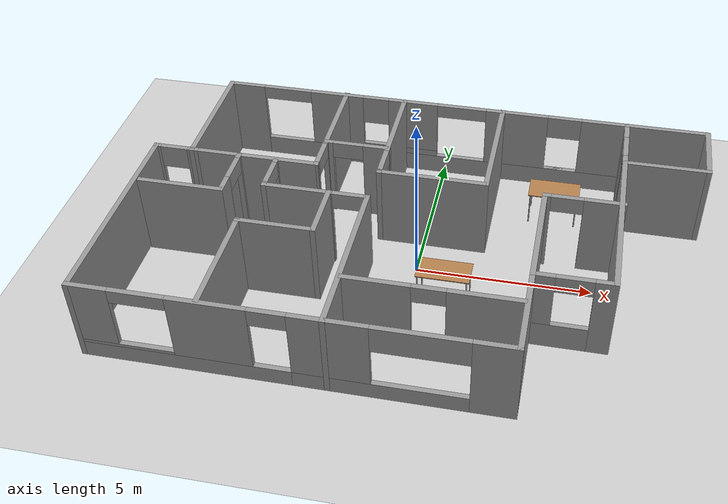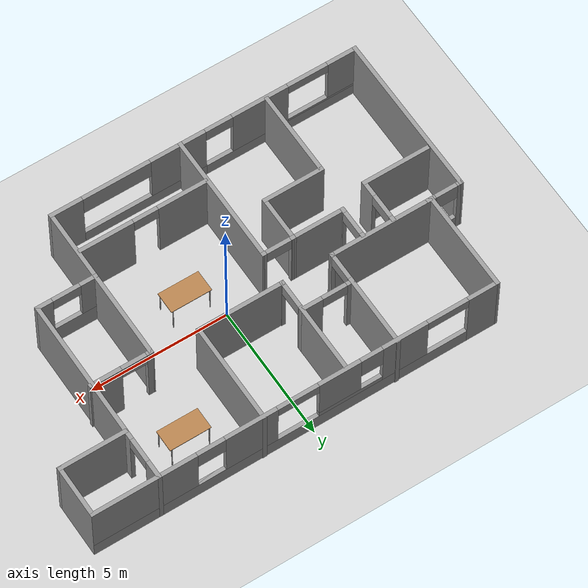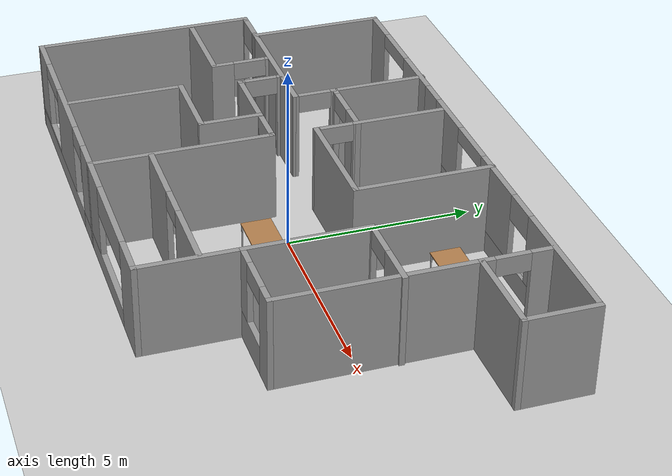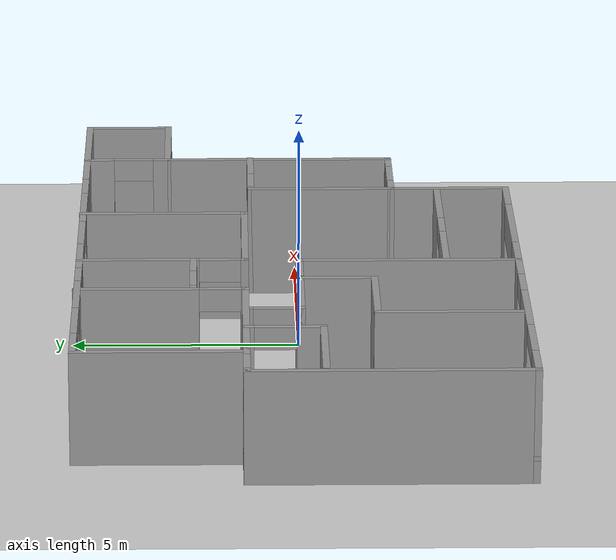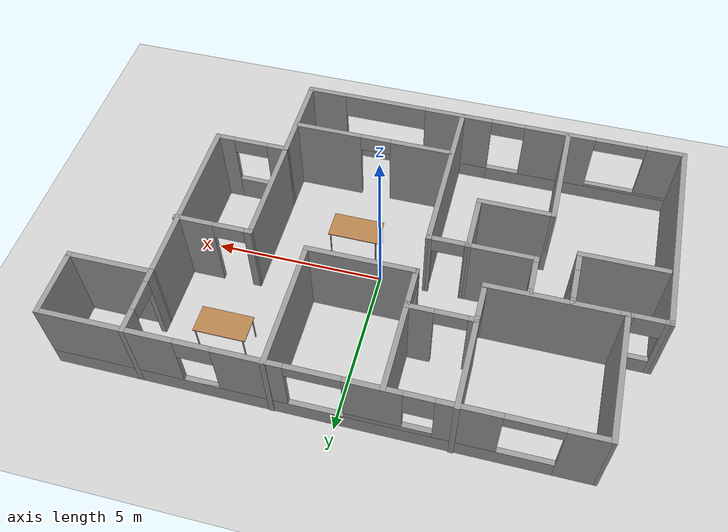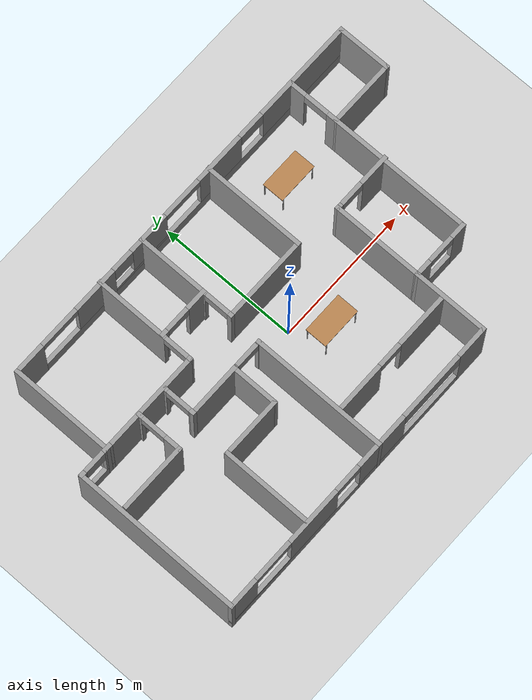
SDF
<sdf version="1.7">
 <world name="default">
  <light name="sun" type="directional">
   <pose>0 0 10 0 -0 0</pose>
   <diffuse>0.8 0.8 0.8 1</diffuse>
   <specular>0.2 0.2 0.2 1</specular>
   <attenuation>
    <range>1000</range>
    <constant>0.9</constant>
    <linear>0.01</linear>
    <quadratic>0.001</quadratic>
   </attenuation>
   <direction>-0.5 0.1 -0.9</direction>
   <spot><inner_angle>0</inner_angle><outer_angle>0</outer_angle><falloff>0</falloff></spot>
  </light>
  <model name="ground_plane">
   <static>1</static>
   <link name="link">
    <collision name="collision">
     <geometry><plane><normal>0 0 1</normal><size>100 100</size></plane></geometry>
     <surface>
      <contact><collide_bitmask>65535</collide_bitmask></contact>
      <friction><ode><mu>100</mu><mu2>50</mu2></ode></friction>
     </surface>
    </collision>
    <visual name="visual">
     <cast_shadows>0</cast_shadows>
     <geometry><plane><normal>0 0 1</normal><size>100 100</size></plane></geometry>
     <material>
      <script><uri>file://media/materials/scripts/gazebo.material</uri><name>Gazebo/Grey</name></script>
     </material>
    </visual>
   </link>
  </model>
  <gravity>0 0 -9.8</gravity>
  <magnetic_field>6e-06 2.3e-05 -4.2e-05</magnetic_field>
  <atmosphere type="adiabatic"/>
  <physics type="ode">
   <max_step_size>0.001</max_step_size>
   <real_time_factor>1</real_time_factor>
   <real_time_update_rate>1000</real_time_update_rate>
  </physics>
  <scene><ambient>0.4 0.4 0.4 1</ambient><background>0.7 0.7 0.7 1</background><shadows>1</shadows></scene>
  <spherical_coordinates>
   <surface_model>EARTH_WGS84</surface_model>
   <latitude_deg>0</latitude_deg>
   <longitude_deg>0</longitude_deg>
   <elevation>0</elevation>
   <heading_deg>0</heading_deg>
  </spherical_coordinates>
  <model name="p140-1">
   <pose>-0.049001 0.028158 0 0 -0 0</pose>
   <link name="Wall_0">
    <pose>0.599879 4.76077 0 0 -0 0</pose>
    <visual name="Wall_0_Visual_0">
     <pose>-6.84206 0 1.25 0 -0 0</pose>
     <geometry><box><size>1.06587 0.15 2.5</size></box></geometry>
     <material>
      <script><uri>file://media/materials/scripts/gazebo.material</uri><name>Gazebo/Grey</name></script>
      <ambient>1 1 1 1</ambient>
     </material>
     <meta><layer>0</layer></meta>
    </visual>
    <collision name="Wall_0_Collision_0">
     <geometry><box><size>1.06587 0.15 2.5</size></box></geometry>
     <pose>-6.84206 0 1.25 0 -0 0</pose>
    </collision>
    <visual name="Wall_0_Visual_1">
     <pose>0.532938 0 0.3 0 -0 0</pose>
     <geometry><box><size>13.6841 0.15 0.6</size></box></geometry>
     <material>
      <script><uri>file://media/materials/scripts/gazebo.material</uri><name>Gazebo/Grey</name></script>
      <ambient>1 1 1 1</ambient>
     </material>
     <meta><layer>0</layer></meta>
    </visual>
    <collision name="Wall_0_Collision_1">
     <geometry><box><size>13.6841 0.15 0.6</size></box></geometry>
     <pose>0.532938 0 0.3 0 -0 0</pose>
    </collision>
    <visual name="Wall_0_Visual_2">
     <pose>-3.97697 0 1.55 0 -0 0</pose>
     <geometry><box><size>1.6643 0.15 1.9</size></box></geometry>
     <material>
      <script><uri>file://media/materials/scripts/gazebo.material</uri><name>Gazebo/Grey</name></script>
      <ambient>1 1 1 1</ambient>
     </material>
     <meta><layer>0</layer></meta>
    </visual>
    <collision name="Wall_0_Collision_2">
     <geometry><box><size>1.6643 0.15 1.9</size></box></geometry>
     <pose>-3.97697 0 1.55 0 -0 0</pose>
    </collision>
    <visual name="Wall_0_Visual_3">
     <pose>1.64336 0 1.55 0 -0 0</pose>
     <geometry><box><size>1.89249 0.15 1.9</size></box></geometry>
     <material>
      <script><uri>file://media/materials/scripts/gazebo.material</uri><name>Gazebo/Grey</name></script>
      <ambient>1 1 1 1</ambient>
     </material>
     <meta><layer>0</layer></meta>
    </visual>
    <collision name="Wall_0_Collision_3">
     <geometry><box><size>1.89249 0.15 1.9</size></box></geometry>
     <pose>1.64336 0 1.55 0 -0 0</pose>
    </collision>
    <visual name="Wall_0_Visual_4">
     <pose>5.4823 0 1.55 0 -0 0</pose>
     <geometry><box><size>3.7854 0.15 1.9</size></box></geometry>
     <material>
      <script><uri>file://media/materials/scripts/gazebo.material</uri><name>Gazebo/Grey</name></script>
      <ambient>1 1 1 1</ambient>
     </material>
     <meta><layer>0</layer></meta>
    </visual>
    <collision name="Wall_0_Collision_4">
     <geometry><box><size>3.7854 0.15 1.9</size></box></geometry>
     <pose>5.4823 0 1.55 0 -0 0</pose>
    </collision>
    <visual name="Wall_0_Visual_5">
     <pose>-1.97385 0 0.7 0 -0 0</pose>
     <geometry><box><size>2.34194 0.15 0.2</size></box></geometry>
     <material>
      <script><uri>file://media/materials/scripts/gazebo.material</uri><name>Gazebo/Grey</name></script>
      <ambient>1 1 1 1</ambient>
     </material>
     <meta><layer>0</layer></meta>
    </visual>
    <collision name="Wall_0_Collision_5">
     <geometry><box><size>2.34194 0.15 0.2</size></box></geometry>
     <pose>-1.97385 0 0.7 0 -0 0</pose>
    </collision>
    <visual name="Wall_0_Visual_6">
     <pose>3.0896 0 0.6 0 -0 0</pose>
     <geometry><box><size>1 0.15 0</size></box></geometry>
     <material>
      <script><uri>file://media/materials/scripts/gazebo.material</uri><name>Gazebo/Grey</name></script>
      <ambient>1 1 1 1</ambient>
     </material>
     <meta><layer>0</layer></meta>
    </visual>
    <collision name="Wall_0_Collision_6">
     <geometry><box><size>1 0.15 0</size></box></geometry>
     <pose>3.0896 0 0.6 0 -0 0</pose>
    </collision>
    <visual name="Wall_0_Visual_7">
     <pose>-1.57385 0 1.65 0 -0 0</pose>
     <geometry><box><size>1.54194 0.15 1.7</size></box></geometry>
     <material>
      <script><uri>file://media/materials/scripts/gazebo.material</uri><name>Gazebo/Grey</name></script>
      <ambient>1 1 1 1</ambient>
     </material>
     <meta><layer>0</layer></meta>
    </visual>
    <collision name="Wall_0_Collision_7">
     <geometry><box><size>1.54194 0.15 1.7</size></box></geometry>
     <pose>-1.57385 0 1.65 0 -0 0</pose>
    </collision>
    <visual name="Wall_0_Visual_8">
     <pose>-2.74482 0 2.05 0 -0 0</pose>
     <geometry><box><size>0.8 0.15 0.9</size></box></geometry>
     <material>
      <script><uri>file://media/materials/scripts/gazebo.material</uri><name>Gazebo/Grey</name></script>
      <ambient>1 1 1 1</ambient>
     </material>
     <meta><layer>0</layer></meta>
    </visual>
    <collision name="Wall_0_Collision_8">
     <geometry><box><size>0.8 0.15 0.9</size></box></geometry>
     <pose>-2.74482 0 2.05 0 -0 0</pose>
    </collision>
    <visual name="Wall_0_Visual_9">
     <pose>3.0896 0 2.15 0 -0 0</pose>
     <geometry><box><size>1 0.15 0.7</size></box></geometry>
     <material>
      <script><uri>file://media/materials/scripts/gazebo.material</uri><name>Gazebo/Grey</name></script>
      <ambient>1 1 1 1</ambient>
     </material>
     <meta><layer>0</layer></meta>
    </visual>
    <collision name="Wall_0_Collision_9">
     <geometry><box><size>1 0.15 0.7</size></box></geometry>
     <pose>3.0896 0 2.15 0 -0 0</pose>
    </collision>
    <visual name="Wall_0_Visual_10">
     <pose>-5.55912 0 2.3 0 -0 0</pose>
     <geometry><box><size>1.5 0.15 0.4</size></box></geometry>
     <material>
      <script><uri>file://media/materials/scripts/gazebo.material</uri><name>Gazebo/Grey</name></script>
      <ambient>1 1 1 1</ambient>
     </material>
     <meta><layer>0</layer></meta>
    </visual>
    <collision name="Wall_0_Collision_10">
     <geometry><box><size>1.5 0.15 0.4</size></box></geometry>
     <pose>-5.55912 0 2.3 0 -0 0</pose>
    </collision>
    <visual name="Wall_0_Visual_11">
     <pose>-0.052884 0 2.3 0 -0 0</pose>
     <geometry><box><size>1.5 0.15 0.4</size></box></geometry>
     <material>
      <script><uri>file://media/materials/scripts/gazebo.material</uri><name>Gazebo/Grey</name></script>
      <ambient>1 1 1 1</ambient>
     </material>
     <meta><layer>0</layer></meta>
    </visual>
    <collision name="Wall_0_Collision_11">
     <geometry><box><size>1.5 0.15 0.4</size></box></geometry>
     <pose>-0.052884 0 2.3 0 -0 0</pose>
    </collision>
   </link>
   <link name="Wall_1">
    <collision name="Wall_1_Collision">
     <geometry><box><size>2 0.15 2.5</size></box></geometry>
     <pose>0 0 1.25 0 -0 0</pose>
    </collision>
    <visual name="Wall_1_Visual">
     <pose>0 0 1.25 0 -0 0</pose>
     <geometry><box><size>2 0.15 2.5</size></box></geometry>
     <material>
      <script><uri>file://media/materials/scripts/gazebo.material</uri><name>Gazebo/Grey</name></script>
      <ambient>1 1 1 1</ambient>
     </material>
     <meta><layer>0</layer></meta>
    </visual>
    <pose>7.89988 3.83576 0 0 -0 -1.5708</pose>
   </link>
   <link name="Wall_12">
    <collision name="Wall_12_Collision">
     <geometry><box><size>3.75 0.15 2.5</size></box></geometry>
     <pose>0 0 1.25 0 -0 0</pose>
    </collision>
    <visual name="Wall_12_Visual">
     <pose>0 0 1.25 0 -0 0</pose>
     <geometry><box><size>3.75 0.15 2.5</size></box></geometry>
     <material>
      <script><uri>file://media/materials/scripts/gazebo.material</uri><name>Gazebo/Grey</name></script>
      <ambient>1 1 1 1</ambient>
     </material>
     <meta><layer>0</layer></meta>
    </visual>
    <pose>-4.88655 1.16077 0 0 -0 3.14159</pose>
   </link>
   <link name="Wall_14">
    <pose>-7.29309 1.16068 0 0 -0 0.000136</pose>
    <visual name="Wall_14_Visual_0">
     <pose>-0.567029 0 1.25 0 -0 0</pose>
     <geometry><box><size>0.229027 0.15 2.5</size></box></geometry>
     <material>
      <script><uri>file://media/materials/scripts/gazebo.material</uri><name>Gazebo/Grey</name></script>
      <ambient>1 1 1 1</ambient>
     </material>
     <meta><layer>0</layer></meta>
    </visual>
    <collision name="Wall_14_Collision_0">
     <geometry><box><size>0.229027 0.15 2.5</size></box></geometry>
     <pose>-0.567029 0 1.25 0 -0 0</pose>
    </collision>
    <visual name="Wall_14_Visual_1">
     <pose>0.114513 0 0.3 0 -0 0</pose>
     <geometry><box><size>1.13406 0.15 0.6</size></box></geometry>
     <material>
      <script><uri>file://media/materials/scripts/gazebo.material</uri><name>Gazebo/Grey</name></script>
      <ambient>1 1 1 1</ambient>
     </material>
     <meta><layer>0</layer></meta>
    </visual>
    <collision name="Wall_14_Collision_1">
     <geometry><box><size>1.13406 0.15 0.6</size></box></geometry>
     <pose>0.114513 0 0.3 0 -0 0</pose>
    </collision>
    <visual name="Wall_14_Visual_2">
     <pose>0.514513 0 1.55 0 -0 0</pose>
     <geometry><box><size>0.334058 0.15 1.9</size></box></geometry>
     <material>
      <script><uri>file://media/materials/scripts/gazebo.material</uri><name>Gazebo/Grey</name></script>
      <ambient>1 1 1 1</ambient>
     </material>
     <meta><layer>0</layer></meta>
    </visual>
    <collision name="Wall_14_Collision_2">
     <geometry><box><size>0.334058 0.15 1.9</size></box></geometry>
     <pose>0.514513 0 1.55 0 -0 0</pose>
    </collision>
    <visual name="Wall_14_Visual_3">
     <pose>-0.052516 0 2.15 0 -0 0</pose>
     <geometry><box><size>0.8 0.15 0.7</size></box></geometry>
     <material>
      <script><uri>file://media/materials/scripts/gazebo.material</uri><name>Gazebo/Grey</name></script>
      <ambient>1 1 1 1</ambient>
     </material>
     <meta><layer>0</layer></meta>
    </visual>
    <collision name="Wall_14_Collision_3">
     <geometry><box><size>0.8 0.15 0.7</size></box></geometry>
     <pose>-0.052516 0 2.15 0 -0 0</pose>
    </collision>
   </link>
   <link name="Wall_16">
    <pose>-1.24674 2.95872 0 0 -0 -1.5708</pose>
    <visual name="Wall_16_Visual_0">
     <pose>-0.535121 0 1.25 0 -0 0</pose>
     <geometry><box><size>2.67976 0.15 2.5</size></box></geometry>
     <material>
      <script><uri>file://media/materials/scripts/gazebo.material</uri><name>Gazebo/Grey</name></script>
      <ambient>1 1 1 1</ambient>
     </material>
     <meta><layer>0</layer></meta>
    </visual>
    <collision name="Wall_16_Collision_0">
     <geometry><box><size>2.67976 0.15 2.5</size></box></geometry>
     <pose>-0.535121 0 1.25 0 -0 0</pose>
    </collision>
    <visual name="Wall_16_Visual_1">
     <pose>1.78988 0 1.25 0 -0 0</pose>
     <geometry><box><size>0.170242 0.15 2.5</size></box></geometry>
     <material>
      <script><uri>file://media/materials/scripts/gazebo.material</uri><name>Gazebo/Grey</name></script>
      <ambient>1 1 1 1</ambient>
     </material>
     <meta><layer>0</layer></meta>
    </visual>
    <collision name="Wall_16_Collision_1">
     <geometry><box><size>0.170242 0.15 2.5</size></box></geometry>
     <pose>1.78988 0 1.25 0 -0 0</pose>
    </collision>
    <visual name="Wall_16_Visual_2">
     <pose>1.25476 0 2.25 0 -0 0</pose>
     <geometry><box><size>0.9 0.15 0.5</size></box></geometry>
     <material>
      <script><uri>file://media/materials/scripts/gazebo.material</uri><name>Gazebo/Grey</name></script>
      <ambient>1 1 1 1</ambient>
     </material>
     <meta><layer>0</layer></meta>
    </visual>
    <collision name="Wall_16_Collision_2">
     <geometry><box><size>0.9 0.15 0.5</size></box></geometry>
     <pose>1.25476 0 2.25 0 -0 0</pose>
    </collision>
   </link>
   <link name="Wall_18">
    <pose>-3.08435 2.97504 0 0 -0 -1.57201</pose>
    <visual name="Wall_18_Visual_0">
     <pose>-0.533918 0 1.25 0 -0 0</pose>
     <geometry><box><size>2.71071 0.15 2.5</size></box></geometry>
     <material>
      <script><uri>file://media/materials/scripts/gazebo.material</uri><name>Gazebo/Grey</name></script>
      <ambient>1 1 1 1</ambient>
     </material>
     <meta><layer>0</layer></meta>
    </visual>
    <collision name="Wall_18_Collision_0">
     <geometry><box><size>2.71071 0.15 2.5</size></box></geometry>
     <pose>-0.533918 0 1.25 0 -0 0</pose>
    </collision>
    <visual name="Wall_18_Visual_1">
     <pose>1.80536 0 1.25 0 -0 0</pose>
     <geometry><box><size>0.167836 0.15 2.5</size></box></geometry>
     <material>
      <script><uri>file://media/materials/scripts/gazebo.material</uri><name>Gazebo/Grey</name></script>
      <ambient>1 1 1 1</ambient>
     </material>
     <meta><layer>0</layer></meta>
    </visual>
    <collision name="Wall_18_Collision_1">
     <geometry><box><size>0.167836 0.15 2.5</size></box></geometry>
     <pose>1.80536 0 1.25 0 -0 0</pose>
    </collision>
    <visual name="Wall_18_Visual_2">
     <pose>1.27144 0 2.25 0 -0 0</pose>
     <geometry><box><size>0.9 0.15 0.5</size></box></geometry>
     <material>
      <script><uri>file://media/materials/scripts/gazebo.material</uri><name>Gazebo/Grey</name></script>
      <ambient>1 1 1 1</ambient>
     </material>
     <meta><layer>0</layer></meta>
    </visual>
    <collision name="Wall_18_Collision_2">
     <geometry><box><size>0.9 0.15 0.5</size></box></geometry>
     <pose>1.27144 0 2.25 0 -0 0</pose>
    </collision>
   </link>
   <link name="Wall_2">
    <collision name="Wall_2_Collision">
     <geometry><box><size>2.5 0.15 2.5</size></box></geometry>
     <pose>0 0 1.25 0 -0 0</pose>
    </collision>
    <visual name="Wall_2_Visual">
     <pose>0 0 1.25 0 -0 0</pose>
     <geometry><box><size>2.5 0.15 2.5</size></box></geometry>
     <material>
      <script><uri>file://media/materials/scripts/gazebo.material</uri><name>Gazebo/Grey</name></script>
      <ambient>1 1 1 1</ambient>
     </material>
     <meta><layer>0</layer></meta>
    </visual>
    <pose>6.72488 2.91077 0 0 -0 3.14159</pose>
   </link>
   <link name="Wall_20">
    <pose>-2.15664 2.2806 0 0 -0 0</pose>
    <visual name="Wall_20_Visual_0">
     <pose>-0.848575 0 1.25 0 -0 0</pose>
     <geometry><box><size>0.272851 0.15 2.5</size></box></geometry>
     <material>
      <script><uri>file://media/materials/scripts/gazebo.material</uri><name>Gazebo/Grey</name></script>
      <ambient>1 1 1 1</ambient>
     </material>
     <meta><layer>0</layer></meta>
    </visual>
    <collision name="Wall_20_Collision_0">
     <geometry><box><size>0.272851 0.15 2.5</size></box></geometry>
     <pose>-0.848575 0 1.25 0 -0 0</pose>
    </collision>
    <visual name="Wall_20_Visual_1">
     <pose>0.586425 0 1.25 0 -0 0</pose>
     <geometry><box><size>0.797149 0.15 2.5</size></box></geometry>
     <material>
      <script><uri>file://media/materials/scripts/gazebo.material</uri><name>Gazebo/Grey</name></script>
      <ambient>1 1 1 1</ambient>
     </material>
     <meta><layer>0</layer></meta>
    </visual>
    <collision name="Wall_20_Collision_1">
     <geometry><box><size>0.797149 0.15 2.5</size></box></geometry>
     <pose>0.586425 0 1.25 0 -0 0</pose>
    </collision>
    <visual name="Wall_20_Visual_2">
     <pose>-0.262149 0 2.25 0 -0 0</pose>
     <geometry><box><size>0.9 0.15 0.5</size></box></geometry>
     <material>
      <script><uri>file://media/materials/scripts/gazebo.material</uri><name>Gazebo/Grey</name></script>
      <ambient>1 1 1 1</ambient>
     </material>
     <meta><layer>0</layer></meta>
    </visual>
    <collision name="Wall_20_Collision_2">
     <geometry><box><size>0.9 0.15 0.5</size></box></geometry>
     <pose>-0.262149 0 2.25 0 -0 0</pose>
    </collision>
   </link>
   <link name="Wall_23">
    <pose>5.54764 3.8364 0 0 -0 -1.56838</pose>
    <visual name="Wall_23_Visual_0">
     <pose>-0.653755 0 1.25 0 -0 0</pose>
     <geometry><box><size>0.693768 0.15 2.5</size></box></geometry>
     <material>
      <script><uri>file://media/materials/scripts/gazebo.material</uri><name>Gazebo/Grey</name></script>
      <ambient>1 1 1 1</ambient>
     </material>
     <meta><layer>0</layer></meta>
    </visual>
    <collision name="Wall_23_Collision_0">
     <geometry><box><size>0.693768 0.15 2.5</size></box></geometry>
     <pose>-0.653755 0 1.25 0 -0 0</pose>
    </collision>
    <visual name="Wall_23_Visual_1">
     <pose>0.796884 0 1.25 0 -0 0</pose>
     <geometry><box><size>0.407511 0.15 2.5</size></box></geometry>
     <material>
      <script><uri>file://media/materials/scripts/gazebo.material</uri><name>Gazebo/Grey</name></script>
      <ambient>1 1 1 1</ambient>
     </material>
     <meta><layer>0</layer></meta>
    </visual>
    <collision name="Wall_23_Collision_1">
     <geometry><box><size>0.407511 0.15 2.5</size></box></geometry>
     <pose>0.796884 0 1.25 0 -0 0</pose>
    </collision>
    <visual name="Wall_23_Visual_2">
     <pose>0.143128 0 2.25 0 -0 0</pose>
     <geometry><box><size>0.9 0.15 0.5</size></box></geometry>
     <material>
      <script><uri>file://media/materials/scripts/gazebo.material</uri><name>Gazebo/Grey</name></script>
      <ambient>1 1 1 1</ambient>
     </material>
     <meta><layer>0</layer></meta>
    </visual>
    <collision name="Wall_23_Collision_2">
     <geometry><box><size>0.9 0.15 0.5</size></box></geometry>
     <pose>0.143128 0 2.25 0 -0 0</pose>
    </collision>
   </link>
   <link name="Wall_25">
    <pose>4.52836 0.999601 0 0 -0 3.14159</pose>
    <visual name="Wall_25_Visual_0">
     <pose>-0.572169 0 1.25 0 -0 0</pose>
     <geometry><box><size>1.16166 0.15 2.5</size></box></geometry>
     <material>
      <script><uri>file://media/materials/scripts/gazebo.material</uri><name>Gazebo/Grey</name></script>
      <ambient>1 1 1 1</ambient>
     </material>
     <meta><layer>0</layer></meta>
    </visual>
    <collision name="Wall_25_Collision_0">
     <geometry><box><size>1.16166 0.15 2.5</size></box></geometry>
     <pose>-0.572169 0 1.25 0 -0 0</pose>
    </collision>
    <visual name="Wall_25_Visual_1">
     <pose>1.03083 0 1.25 0 -0 0</pose>
     <geometry><box><size>0.244337 0.15 2.5</size></box></geometry>
     <material>
      <script><uri>file://media/materials/scripts/gazebo.material</uri><name>Gazebo/Grey</name></script>
      <ambient>1 1 1 1</ambient>
     </material>
     <meta><layer>0</layer></meta>
    </visual>
    <collision name="Wall_25_Collision_1">
     <geometry><box><size>0.244337 0.15 2.5</size></box></geometry>
     <pose>1.03083 0 1.25 0 -0 0</pose>
    </collision>
    <visual name="Wall_25_Visual_2">
     <pose>0.458663 0 2.25 0 -0 0</pose>
     <geometry><box><size>0.9 0.15 0.5</size></box></geometry>
     <material>
      <script><uri>file://media/materials/scripts/gazebo.material</uri><name>Gazebo/Grey</name></script>
      <ambient>1 1 1 1</ambient>
     </material>
     <meta><layer>0</layer></meta>
    </visual>
    <collision name="Wall_25_Collision_2">
     <geometry><box><size>0.9 0.15 0.5</size></box></geometry>
     <pose>0.458663 0 2.25 0 -0 0</pose>
    </collision>
   </link>
   <link name="Wall_27">
    <collision name="Wall_27_Collision">
     <geometry><box><size>3.33883 0.15 2.5</size></box></geometry>
     <pose>0 0 1.25 0 -0 0</pose>
    </collision>
    <visual name="Wall_27_Visual">
     <pose>0 0 1.25 0 -0 0</pose>
     <geometry><box><size>3.33883 0.15 2.5</size></box></geometry>
     <material>
      <script><uri>file://media/materials/scripts/gazebo.material</uri><name>Gazebo/Grey</name></script>
      <ambient>1 1 1 1</ambient>
     </material>
     <meta><layer>0</layer></meta>
    </visual>
    <pose>3.45012 -0.594817 0 0 -0 -1.57095</pose>
   </link>
   <link name="Wall_29">
    <pose>1.05437 -3.22201 0 0 -0 0</pose>
    <visual name="Wall_29_Visual_0">
     <pose>-1.44852 0 1.25 0 -0 0</pose>
     <geometry><box><size>1.85296 0.15 2.5</size></box></geometry>
     <material>
      <script><uri>file://media/materials/scripts/gazebo.material</uri><name>Gazebo/Grey</name></script>
      <ambient>1 1 1 1</ambient>
     </material>
     <meta><layer>0</layer></meta>
    </visual>
    <collision name="Wall_29_Collision_0">
     <geometry><box><size>1.85296 0.15 2.5</size></box></geometry>
     <pose>-1.44852 0 1.25 0 -0 0</pose>
    </collision>
    <visual name="Wall_29_Visual_1">
     <pose>1.37648 0 1.25 0 -0 0</pose>
     <geometry><box><size>1.99704 0.15 2.5</size></box></geometry>
     <material>
      <script><uri>file://media/materials/scripts/gazebo.material</uri><name>Gazebo/Grey</name></script>
      <ambient>1 1 1 1</ambient>
     </material>
     <meta><layer>0</layer></meta>
    </visual>
    <collision name="Wall_29_Collision_1">
     <geometry><box><size>1.99704 0.15 2.5</size></box></geometry>
     <pose>1.37648 0 1.25 0 -0 0</pose>
    </collision>
    <visual name="Wall_29_Visual_2">
     <pose>-0.072041 0 2.25 0 -0 0</pose>
     <geometry><box><size>0.9 0.15 0.5</size></box></geometry>
     <material>
      <script><uri>file://media/materials/scripts/gazebo.material</uri><name>Gazebo/Grey</name></script>
      <ambient>1 1 1 1</ambient>
     </material>
     <meta><layer>0</layer></meta>
    </visual>
    <collision name="Wall_29_Collision_2">
     <geometry><box><size>0.9 0.15 0.5</size></box></geometry>
     <pose>-0.072041 0 2.25 0 -0 0</pose>
    </collision>
   </link>
   <link name="Wall_3">
    <collision name="Wall_3_Collision">
     <geometry><box><size>5.25 0.15 2.5</size></box></geometry>
     <pose>0 0 1.25 0 -0 0</pose>
    </collision>
    <visual name="Wall_3_Visual">
     <pose>0 0 1.25 0 -0 0</pose>
     <geometry><box><size>5.25 0.15 2.5</size></box></geometry>
     <material>
      <script><uri>file://media/materials/scripts/gazebo.material</uri><name>Gazebo/Grey</name></script>
      <ambient>1 1 1 1</ambient>
     </material>
     <meta><layer>0</layer></meta>
    </visual>
    <pose>5.54988 0.360765 0 0 -0 -1.5708</pose>
   </link>
   <link name="Wall_31">
    <pose>-5.37531 0.337096 0 0 -0 -1.5708</pose>
    <visual name="Wall_31_Visual_0">
     <pose>-0.767668 0 1.25 0 -0 0</pose>
     <geometry><box><size>0.214665 0.15 2.5</size></box></geometry>
     <material>
      <script><uri>file://media/materials/scripts/gazebo.material</uri><name>Gazebo/Grey</name></script>
      <ambient>1 1 1 1</ambient>
     </material>
     <meta><layer>0</layer></meta>
    </visual>
    <collision name="Wall_31_Collision_0">
     <geometry><box><size>0.214665 0.15 2.5</size></box></geometry>
     <pose>-0.767668 0 1.25 0 -0 0</pose>
    </collision>
    <visual name="Wall_31_Visual_1">
     <pose>0.557332 0 1.25 0 -0 0</pose>
     <geometry><box><size>0.635335 0.15 2.5</size></box></geometry>
     <material>
      <script><uri>file://media/materials/scripts/gazebo.material</uri><name>Gazebo/Grey</name></script>
      <ambient>1 1 1 1</ambient>
     </material>
     <meta><layer>0</layer></meta>
    </visual>
    <collision name="Wall_31_Collision_1">
     <geometry><box><size>0.635335 0.15 2.5</size></box></geometry>
     <pose>0.557332 0 1.25 0 -0 0</pose>
    </collision>
    <visual name="Wall_31_Visual_2">
     <pose>-0.210335 0 2.25 0 -0 0</pose>
     <geometry><box><size>0.9 0.15 0.5</size></box></geometry>
     <material>
      <script><uri>file://media/materials/scripts/gazebo.material</uri><name>Gazebo/Grey</name></script>
      <ambient>1 1 1 1</ambient>
     </material>
     <meta><layer>0</layer></meta>
    </visual>
    <collision name="Wall_31_Collision_2">
     <geometry><box><size>0.9 0.15 0.5</size></box></geometry>
     <pose>-0.210335 0 2.25 0 -0 0</pose>
    </collision>
   </link>
   <link name="Wall_32">
    <collision name="Wall_32_Collision">
     <geometry><box><size>2.5 0.15 2.5</size></box></geometry>
     <pose>0 0 1.25 0 -0 0</pose>
    </collision>
    <visual name="Wall_32_Visual">
     <pose>0 0 1.25 0 -0 0</pose>
     <geometry><box><size>2.5 0.15 2.5</size></box></geometry>
     <material>
      <script><uri>file://media/materials/scripts/gazebo.material</uri><name>Gazebo/Grey</name></script>
      <ambient>1 1 1 1</ambient>
     </material>
     <meta><layer>0</layer></meta>
    </visual>
    <pose>-6.55032 -0.462904 0 0 -0 3.14159</pose>
   </link>
   <link name="Wall_34">
    <collision name="Wall_34_Collision">
     <geometry><box><size>3.25 0.15 2.5</size></box></geometry>
     <pose>0 0 1.25 0 -0 0</pose>
    </collision>
    <visual name="Wall_34_Visual">
     <pose>0 0 1.25 0 -0 0</pose>
     <geometry><box><size>3.25 0.15 2.5</size></box></geometry>
     <material>
      <script><uri>file://media/materials/scripts/gazebo.material</uri><name>Gazebo/Grey</name></script>
      <ambient>1 1 1 1</ambient>
     </material>
     <meta><layer>0</layer></meta>
    </visual>
    <pose>-4.51879 -3.17093 0 0 -0 1.5708</pose>
   </link>
   <link name="Wall_35">
    <collision name="Wall_35_Collision">
     <geometry><box><size>2.25 0.15 2.5</size></box></geometry>
     <pose>0 0 1.25 0 -0 0</pose>
    </collision>
    <visual name="Wall_35_Visual">
     <pose>0 0 1.25 0 -0 0</pose>
     <geometry><box><size>2.25 0.15 2.5</size></box></geometry>
     <material>
      <script><uri>file://media/materials/scripts/gazebo.material</uri><name>Gazebo/Grey</name></script>
      <ambient>1 1 1 1</ambient>
     </material>
     <meta><layer>0</layer></meta>
    </visual>
    <pose>-3.46879 -1.62093 0 0 -0 0</pose>
   </link>
   <link name="Wall_36">
    <collision name="Wall_36_Collision">
     <geometry><box><size>1.75 0.15 2.5</size></box></geometry>
     <pose>0 0 1.25 0 -0 0</pose>
    </collision>
    <visual name="Wall_36_Visual">
     <pose>0 0 1.25 0 -0 0</pose>
     <geometry><box><size>1.75 0.15 2.5</size></box></geometry>
     <material>
      <script><uri>file://media/materials/scripts/gazebo.material</uri><name>Gazebo/Grey</name></script>
      <ambient>1 1 1 1</ambient>
     </material>
     <meta><layer>0</layer></meta>
    </visual>
    <pose>-2.41879 -0.820933 0 0 -0 1.5708</pose>
   </link>
   <link name="Wall_37">
    <pose>-1.86871 -0.021166 0 0 -0 -0.000424</pose>
    <visual name="Wall_37_Visual_0">
     <pose>-0.534962 0 1.25 0 -0 0</pose>
     <geometry><box><size>0.180076 0.15 2.5</size></box></geometry>
     <material>
      <script><uri>file://media/materials/scripts/gazebo.material</uri><name>Gazebo/Grey</name></script>
      <ambient>1 1 1 1</ambient>
     </material>
     <meta><layer>0</layer></meta>
    </visual>
    <collision name="Wall_37_Collision_0">
     <geometry><box><size>0.180076 0.15 2.5</size></box></geometry>
     <pose>-0.534962 0 1.25 0 -0 0</pose>
    </collision>
    <visual name="Wall_37_Visual_1">
     <pose>0.540038 0 1.25 0 -0 0</pose>
     <geometry><box><size>0.169924 0.15 2.5</size></box></geometry>
     <material>
      <script><uri>file://media/materials/scripts/gazebo.material</uri><name>Gazebo/Grey</name></script>
      <ambient>1 1 1 1</ambient>
     </material>
     <meta><layer>0</layer></meta>
    </visual>
    <collision name="Wall_37_Collision_1">
     <geometry><box><size>0.169924 0.15 2.5</size></box></geometry>
     <pose>0.540038 0 1.25 0 -0 0</pose>
    </collision>
    <visual name="Wall_37_Visual_2">
     <pose>0.005076 0 2.25 0 -0 0</pose>
     <geometry><box><size>0.9 0.15 0.5</size></box></geometry>
     <material>
      <script><uri>file://media/materials/scripts/gazebo.material</uri><name>Gazebo/Grey</name></script>
      <ambient>1 1 1 1</ambient>
     </material>
     <meta><layer>0</layer></meta>
    </visual>
    <collision name="Wall_37_Collision_2">
     <geometry><box><size>0.9 0.15 0.5</size></box></geometry>
     <pose>0.005076 0 2.25 0 -0 0</pose>
    </collision>
   </link>
   <link name="Wall_38">
    <collision name="Wall_38_Collision">
     <geometry><box><size>4.918 0.15 2.5</size></box></geometry>
     <pose>0 0 1.25 0 -0 0</pose>
    </collision>
    <visual name="Wall_38_Visual">
     <pose>0 0 1.25 0 -0 0</pose>
     <geometry><box><size>4.918 0.15 2.5</size></box></geometry>
     <material>
      <script><uri>file://media/materials/scripts/gazebo.material</uri><name>Gazebo/Grey</name></script>
      <ambient>1 1 1 1</ambient>
     </material>
     <meta><layer>0</layer></meta>
    </visual>
    <pose>-1.31864 -2.4054 0 0 -0 -1.5708</pose>
   </link>
   <link name="Wall_4">
    <pose>4.49988 -2.18924 0 0 -0 3.14159</pose>
    <visual name="Wall_4_Visual_0">
     <pose>-0.825542 0 1.25 0 -0 0</pose>
     <geometry><box><size>0.598915 0.15 2.5</size></box></geometry>
     <material>
      <script><uri>file://media/materials/scripts/gazebo.material</uri><name>Gazebo/Grey</name></script>
      <ambient>1 1 1 1</ambient>
     </material>
     <meta><layer>0</layer></meta>
    </visual>
    <collision name="Wall_4_Collision_0">
     <geometry><box><size>0.598915 0.15 2.5</size></box></geometry>
     <pose>-0.825542 0 1.25 0 -0 0</pose>
    </collision>
    <visual name="Wall_4_Visual_1">
     <pose>0.299458 0 0.4 0 -0 0</pose>
     <geometry><box><size>1.65108 0.15 0.8</size></box></geometry>
     <material>
      <script><uri>file://media/materials/scripts/gazebo.material</uri><name>Gazebo/Grey</name></script>
      <ambient>1 1 1 1</ambient>
     </material>
     <meta><layer>0</layer></meta>
    </visual>
    <collision name="Wall_4_Collision_1">
     <geometry><box><size>1.65108 0.15 0.8</size></box></geometry>
     <pose>0.299458 0 0.4 0 -0 0</pose>
    </collision>
    <visual name="Wall_4_Visual_2">
     <pose>0.799458 0 1.65 0 -0 0</pose>
     <geometry><box><size>0.651085 0.15 1.7</size></box></geometry>
     <material>
      <script><uri>file://media/materials/scripts/gazebo.material</uri><name>Gazebo/Grey</name></script>
      <ambient>1 1 1 1</ambient>
     </material>
     <meta><layer>0</layer></meta>
    </visual>
    <collision name="Wall_4_Collision_2">
     <geometry><box><size>0.651085 0.15 1.7</size></box></geometry>
     <pose>0.799458 0 1.65 0 -0 0</pose>
    </collision>
    <visual name="Wall_4_Visual_3">
     <pose>-0.026085 0 2.25 0 -0 0</pose>
     <geometry><box><size>1 0.15 0.5</size></box></geometry>
     <material>
      <script><uri>file://media/materials/scripts/gazebo.material</uri><name>Gazebo/Grey</name></script>
      <ambient>1 1 1 1</ambient>
     </material>
     <meta><layer>0</layer></meta>
    </visual>
    <collision name="Wall_4_Collision_3">
     <geometry><box><size>1 0.15 0.5</size></box></geometry>
     <pose>-0.026085 0 2.25 0 -0 0</pose>
    </collision>
   </link>
   <link name="Wall_40">
    <collision name="Wall_40_Collision">
     <geometry><box><size>2 0.15 2.5</size></box></geometry>
     <pose>0 0 1.25 0 -0 0</pose>
    </collision>
    <visual name="Wall_40_Visual">
     <pose>0 0 1.25 0 -0 0</pose>
     <geometry><box><size>2 0.15 2.5</size></box></geometry>
     <material>
      <script><uri>file://media/materials/scripts/gazebo.material</uri><name>Gazebo/Grey</name></script>
      <ambient>1 1 1 1</ambient>
     </material>
     <meta><layer>0</layer></meta>
    </visual>
    <pose>-3.34379 -0.020933 0 0 -0 3.14159</pose>
   </link>
   <link name="Wall_41">
    <pose>-4.26879 0.529067 0 0 -0 1.5708</pose>
    <visual name="Wall_41_Visual_0">
     <pose>-0.525797 0 1.25 0 -0 0</pose>
     <geometry><box><size>0.198405 0.15 2.5</size></box></geometry>
     <material>
      <script><uri>file://media/materials/scripts/gazebo.material</uri><name>Gazebo/Grey</name></script>
      <ambient>1 1 1 1</ambient>
     </material>
     <meta><layer>0</layer></meta>
    </visual>
    <collision name="Wall_41_Collision_0">
     <geometry><box><size>0.198405 0.15 2.5</size></box></geometry>
     <pose>-0.525797 0 1.25 0 -0 0</pose>
    </collision>
    <visual name="Wall_41_Visual_1">
     <pose>0.549203 0 1.25 0 -0 0</pose>
     <geometry><box><size>0.151595 0.15 2.5</size></box></geometry>
     <material>
      <script><uri>file://media/materials/scripts/gazebo.material</uri><name>Gazebo/Grey</name></script>
      <ambient>1 1 1 1</ambient>
     </material>
     <meta><layer>0</layer></meta>
    </visual>
    <collision name="Wall_41_Collision_1">
     <geometry><box><size>0.151595 0.15 2.5</size></box></geometry>
     <pose>0.549203 0 1.25 0 -0 0</pose>
    </collision>
    <visual name="Wall_41_Visual_2">
     <pose>0.023405 0 2.25 0 -0 0</pose>
     <geometry><box><size>0.9 0.15 0.5</size></box></geometry>
     <material>
      <script><uri>file://media/materials/scripts/gazebo.material</uri><name>Gazebo/Grey</name></script>
      <ambient>1 1 1 1</ambient>
     </material>
     <meta><layer>0</layer></meta>
    </visual>
    <collision name="Wall_41_Collision_2">
     <geometry><box><size>0.9 0.15 0.5</size></box></geometry>
     <pose>0.023405 0 2.25 0 -0 0</pose>
    </collision>
   </link>
   <link name="Wall_43">
    <collision name="Wall_43_Collision">
     <geometry><box><size>3.769 0.15 2.5</size></box></geometry>
     <pose>0 0 1.25 0 -0 0</pose>
    </collision>
    <visual name="Wall_43_Visual">
     <pose>0 0 1.25 0 -0 0</pose>
     <geometry><box><size>3.769 0.15 2.5</size></box></geometry>
     <material>
      <script><uri>file://media/materials/scripts/gazebo.material</uri><name>Gazebo/Grey</name></script>
      <ambient>1 1 1 1</ambient>
     </material>
     <meta><layer>0</layer></meta>
    </visual>
    <pose>1.79836 2.9681 0 0 -0 -1.5708</pose>
   </link>
   <link name="Wall_44">
    <collision name="Wall_44_Collision">
     <geometry><box><size>3.1949 0.15 2.5</size></box></geometry>
     <pose>0 0 1.25 0 -0 0</pose>
    </collision>
    <visual name="Wall_44_Visual">
     <pose>0 0 1.25 0 -0 0</pose>
     <geometry><box><size>3.1949 0.15 2.5</size></box></geometry>
     <material>
      <script><uri>file://media/materials/scripts/gazebo.material</uri><name>Gazebo/Grey</name></script>
      <ambient>1 1 1 1</ambient>
     </material>
     <meta><layer>0</layer></meta>
    </visual>
    <pose>0.27581 1.15866 0 0 -0 3.14155</pose>
   </link>
   <link name="Wall_5">
    <collision name="Wall_5_Collision">
     <geometry><box><size>2.75 0.15 2.5</size></box></geometry>
     <pose>0 0 1.25 0 -0 0</pose>
    </collision>
    <visual name="Wall_5_Visual">
     <pose>0 0 1.25 0 -0 0</pose>
     <geometry><box><size>2.75 0.15 2.5</size></box></geometry>
     <material>
      <script><uri>file://media/materials/scripts/gazebo.material</uri><name>Gazebo/Grey</name></script>
      <ambient>1 1 1 1</ambient>
     </material>
     <meta><layer>0</layer></meta>
    </visual>
    <pose>3.44988 -3.48923 0 0 -0 -1.5708</pose>
   </link>
   <link name="Wall_6">
    <pose>-2.22488 -4.78932 0 0 -0 -3.14158</pose>
    <visual name="Wall_6_Visual_0">
     <pose>-5.14923 0 1.25 0 -0 0</pose>
     <geometry><box><size>1.20154 0.15 2.5</size></box></geometry>
     <material>
      <script><uri>file://media/materials/scripts/gazebo.material</uri><name>Gazebo/Grey</name></script>
      <ambient>1 1 1 1</ambient>
     </material>
     <meta><layer>0</layer></meta>
    </visual>
    <collision name="Wall_6_Collision_0">
     <geometry><box><size>1.20154 0.15 2.5</size></box></geometry>
     <pose>-5.14923 0 1.25 0 -0 0</pose>
    </collision>
    <visual name="Wall_6_Visual_1">
     <pose>-2.27236 0 0.25 0 -0 0</pose>
     <geometry><box><size>4.55219 0.15 0.5</size></box></geometry>
     <material>
      <script><uri>file://media/materials/scripts/gazebo.material</uri><name>Gazebo/Grey</name></script>
      <ambient>1 1 1 1</ambient>
     </material>
     <meta><layer>0</layer></meta>
    </visual>
    <collision name="Wall_6_Collision_1">
     <geometry><box><size>4.55219 0.15 0.5</size></box></geometry>
     <pose>-2.27236 0 0.25 0 -0 0</pose>
    </collision>
    <visual name="Wall_6_Visual_2">
     <pose>2.87687 0 0.25 0 -0 0</pose>
     <geometry><box><size>5.74627 0.15 0.5</size></box></geometry>
     <material>
      <script><uri>file://media/materials/scripts/gazebo.material</uri><name>Gazebo/Grey</name></script>
      <ambient>1 1 1 1</ambient>
     </material>
     <meta><layer>0</layer></meta>
    </visual>
    <collision name="Wall_6_Collision_2">
     <geometry><box><size>5.74627 0.15 0.5</size></box></geometry>
     <pose>2.87687 0 0.25 0 -0 0</pose>
    </collision>
    <visual name="Wall_6_Visual_3">
     <pose>2.05169 0 1.5 0 -0 0</pose>
     <geometry><box><size>2.09592 0.15 2</size></box></geometry>
     <material>
      <script><uri>file://media/materials/scripts/gazebo.material</uri><name>Gazebo/Grey</name></script>
      <ambient>1 1 1 1</ambient>
     </material>
     <meta><layer>0</layer></meta>
    </visual>
    <collision name="Wall_6_Collision_3">
     <geometry><box><size>2.09592 0.15 2</size></box></geometry>
     <pose>2.05169 0 1.5 0 -0 0</pose>
    </collision>
    <visual name="Wall_6_Visual_4">
     <pose>4.42483 0 0.55 0 -0 0</pose>
     <geometry><box><size>2.65034 0.15 0.1</size></box></geometry>
     <material>
      <script><uri>file://media/materials/scripts/gazebo.material</uri><name>Gazebo/Grey</name></script>
      <ambient>1 1 1 1</ambient>
     </material>
     <meta><layer>0</layer></meta>
    </visual>
    <collision name="Wall_6_Collision_4">
     <geometry><box><size>2.65034 0.15 0.1</size></box></geometry>
     <pose>4.42483 0 0.55 0 -0 0</pose>
    </collision>
    <visual name="Wall_6_Visual_5">
     <pose>-1.02236 0 1.5 0 -0 0</pose>
     <geometry><box><size>2.05219 0.15 2</size></box></geometry>
     <material>
      <script><uri>file://media/materials/scripts/gazebo.material</uri><name>Gazebo/Grey</name></script>
      <ambient>1 1 1 1</ambient>
     </material>
     <meta><layer>0</layer></meta>
    </visual>
    <collision name="Wall_6_Collision_5">
     <geometry><box><size>2.05219 0.15 2</size></box></geometry>
     <pose>-1.02236 0 1.5 0 -0 0</pose>
    </collision>
    <visual name="Wall_6_Visual_6">
     <pose>-1.02236 0 1.5 0 -0 0</pose>
     <geometry><box><size>2.05219 0.15 2</size></box></geometry>
     <material>
      <script><uri>file://media/materials/scripts/gazebo.material</uri><name>Gazebo/Grey</name></script>
      <ambient>1 1 1 1</ambient>
     </material>
     <meta><layer>0</layer></meta>
    </visual>
    <collision name="Wall_6_Collision_6">
     <geometry><box><size>2.05219 0.15 2</size></box></geometry>
     <pose>-1.02236 0 1.5 0 -0 0</pose>
    </collision>
    <visual name="Wall_6_Visual_7">
     <pose>5.17483 0 1.55 0 -0 0</pose>
     <geometry><box><size>1.15034 0.15 1.9</size></box></geometry>
     <material>
      <script><uri>file://media/materials/scripts/gazebo.material</uri><name>Gazebo/Grey</name></script>
      <ambient>1 1 1 1</ambient>
     </material>
     <meta><layer>0</layer></meta>
    </visual>
    <collision name="Wall_6_Collision_7">
     <geometry><box><size>1.15034 0.15 1.9</size></box></geometry>
     <pose>5.17483 0 1.55 0 -0 0</pose>
    </collision>
    <visual name="Wall_6_Visual_8">
     <pose>-3.29846 0 2.1 0 -0 0</pose>
     <geometry><box><size>2.5 0.15 0.8</size></box></geometry>
     <material>
      <script><uri>file://media/materials/scripts/gazebo.material</uri><name>Gazebo/Grey</name></script>
      <ambient>1 1 1 1</ambient>
     </material>
     <meta><layer>0</layer></meta>
    </visual>
    <collision name="Wall_6_Collision_8">
     <geometry><box><size>2.5 0.15 0.8</size></box></geometry>
     <pose>-3.29846 0 2.1 0 -0 0</pose>
    </collision>
    <visual name="Wall_6_Visual_9">
     <pose>0.503731 0 2.25 0 -0 0</pose>
     <geometry><box><size>1 0.15 0.5</size></box></geometry>
     <material>
      <script><uri>file://media/materials/scripts/gazebo.material</uri><name>Gazebo/Grey</name></script>
      <ambient>1 1 1 1</ambient>
     </material>
     <meta><layer>0</layer></meta>
    </visual>
    <collision name="Wall_6_Collision_9">
     <geometry><box><size>1 0.15 0.5</size></box></geometry>
     <pose>0.503731 0 2.25 0 -0 0</pose>
    </collision>
    <visual name="Wall_6_Visual_10">
     <pose>0.503731 0 2.25 0 -0 0</pose>
     <geometry><box><size>1 0.15 0.5</size></box></geometry>
     <material>
      <script><uri>file://media/materials/scripts/gazebo.material</uri><name>Gazebo/Grey</name></script>
      <ambient>1 1 1 1</ambient>
     </material>
     <meta><layer>0</layer></meta>
    </visual>
    <collision name="Wall_6_Collision_10">
     <geometry><box><size>1 0.15 0.5</size></box></geometry>
     <pose>0.503731 0 2.25 0 -0 0</pose>
    </collision>
    <visual name="Wall_6_Visual_11">
     <pose>3.84966 0 2.3 0 -0 0</pose>
     <geometry><box><size>1.5 0.15 0.4</size></box></geometry>
     <material>
      <script><uri>file://media/materials/scripts/gazebo.material</uri><name>Gazebo/Grey</name></script>
      <ambient>1 1 1 1</ambient>
     </material>
     <meta><layer>0</layer></meta>
    </visual>
    <collision name="Wall_6_Collision_11">
     <geometry><box><size>1.5 0.15 0.4</size></box></geometry>
     <pose>3.84966 0 2.3 0 -0 0</pose>
    </collision>
   </link>
   <link name="Wall_7">
    <collision name="Wall_7_Collision">
     <geometry><box><size>6.1 0.15 2.5</size></box></geometry>
     <pose>0 0 1.25 0 -0 0</pose>
    </collision>
    <visual name="Wall_7_Visual">
     <pose>0 0 1.25 0 -0 0</pose>
     <geometry><box><size>6.1 0.15 2.5</size></box></geometry>
     <material>
      <script><uri>file://media/materials/scripts/gazebo.material</uri><name>Gazebo/Grey</name></script>
      <ambient>1 1 1 1</ambient>
     </material>
     <meta><layer>0</layer></meta>
    </visual>
    <pose>-7.89963 -1.8144 0 0 -0 1.5708</pose>
   </link>
   <link name="Wall_9">
    <collision name="Wall_9_Collision">
     <geometry><box><size>3.75 0.15 2.5</size></box></geometry>
     <pose>0 0 1.25 0 -0 0</pose>
    </collision>
    <visual name="Wall_9_Visual">
     <pose>0 0 1.25 0 -0 0</pose>
     <geometry><box><size>3.75 0.15 2.5</size></box></geometry>
     <material>
      <script><uri>file://media/materials/scripts/gazebo.material</uri><name>Gazebo/Grey</name></script>
      <ambient>1 1 1 1</ambient>
     </material>
     <meta><layer>0</layer></meta>
    </visual>
    <pose>-6.79964 2.9606 0 0 -0 1.5708</pose>
   </link>
   <static>1</static>
  </model>
  <model name="Table">
   <static>1</static>
   <link name="link">
    <collision name="surface">
     <pose>0 0 1 0 -0 0</pose>
     <geometry><box><size>1.5 0.8 0.03</size></box></geometry>
     <surface><friction><ode><mu>0.6</mu><mu2>0.6</mu2></ode></friction></surface>
    </collision>
    <visual name="visual1">
     <pose>0 0 1 0 -0 0</pose>
     <geometry><box><size>1.5 0.8 0.03</size></box></geometry>
     <material>
      <diffuse>1 1 1 1</diffuse>
      <script><uri>file://media/materials/scripts/gazebo.material</uri><name>Gazebo/Wood</name></script>
      <pbr>
       <metal>
        <albedo_map>https://fuel.ignitionrobotics.org/1.0/openrobotics/models/table/3/files/Table_Diffuse.jpg</albedo_map>
       </metal>
      </pbr>
     </material>
    </visual>
    <collision name="front_left_leg">
     <pose>0.68 0.38 0.5 0 -0 0</pose>
     <geometry><cylinder><radius>0.02</radius><length>1</length></cylinder></geometry>
    </collision>
    <visual name="front_left_leg">
     <pose>0.68 0.38 0.5 0 -0 0</pose>
     <geometry><cylinder><radius>0.02</radius><length>1</length></cylinder></geometry>
     <material>
      <diffuse>0.5 0.5 0.5 1</diffuse>
      <script><uri>file://media/materials/scripts/gazebo.material</uri><name>Gazebo/Grey</name></script>
     </material>
    </visual>
    <collision name="front_right_leg">
     <pose>0.68 -0.38 0.5 0 -0 0</pose>
     <geometry><cylinder><radius>0.02</radius><length>1</length></cylinder></geometry>
    </collision>
    <visual name="front_right_leg">
     <pose>0.68 -0.38 0.5 0 -0 0</pose>
     <geometry><cylinder><radius>0.02</radius><length>1</length></cylinder></geometry>
     <material>
      <diffuse>0.5 0.5 0.5 1</diffuse>
      <script><uri>file://media/materials/scripts/gazebo.material</uri><name>Gazebo/Grey</name></script>
     </material>
    </visual>
    <collision name="back_right_leg">
     <pose>-0.68 -0.38 0.5 0 -0 0</pose>
     <geometry><cylinder><radius>0.02</radius><length>1</length></cylinder></geometry>
    </collision>
    <visual name="back_right_leg">
     <pose>-0.68 -0.38 0.5 0 -0 0</pose>
     <geometry><cylinder><radius>0.02</radius><length>1</length></cylinder></geometry>
     <material>
      <diffuse>0.5 0.5 0.5 1</diffuse>
      <script><uri>file://media/materials/scripts/gazebo.material</uri><name>Gazebo/Grey</name></script>
     </material>
    </visual>
    <collision name="back_left_leg">
     <pose>-0.68 0.38 0.5 0 -0 0</pose>
     <geometry><cylinder><radius>0.02</radius><length>1</length></cylinder></geometry>
    </collision>
    <visual name="back_left_leg">
     <pose>-0.68 0.38 0.5 0 -0 0</pose>
     <geometry><cylinder><radius>0.02</radius><length>1</length></cylinder></geometry>
     <material>
      <diffuse>0.5 0.5 0.5 1</diffuse>
      <script><uri>file://media/materials/scripts/gazebo.material</uri><name>Gazebo/Grey</name></script>
     </material>
    </visual>
   </link>
   <pose>0.954286 -0.913405 0 0 -0 0</pose>
  </model>
  <model name="Table_0">
   <static>1</static>
   <link name="link">
    <collision name="surface">
     <pose>0 0 1 0 -0 0</pose>
     <geometry><box><size>1.5 0.8 0.03</size></box></geometry>
     <surface><friction><ode><mu>0.6</mu><mu2>0.6</mu2></ode></friction></surface>
    </collision>
    <visual name="visual1">
     <pose>0 0 1 0 -0 0</pose>
     <geometry><box><size>1.5 0.8 0.03</size></box></geometry>
     <material>
      <diffuse>1 1 1 1</diffuse>
      <script><uri>file://media/materials/scripts/gazebo.material</uri><name>Gazebo/Wood</name></script>
      <pbr>
       <metal>
        <albedo_map>https://fuel.ignitionrobotics.org/1.0/openrobotics/models/table/3/files/Table_Diffuse.jpg</albedo_map>
       </metal>
      </pbr>
     </material>
    </visual>
    <collision name="front_left_leg">
     <pose>0.68 0.38 0.5 0 -0 0</pose>
     <geometry><cylinder><radius>0.02</radius><length>1</length></cylinder></geometry>
    </collision>
    <visual name="front_left_leg">
     <pose>0.68 0.38 0.5 0 -0 0</pose>
     <geometry><cylinder><radius>0.02</radius><length>1</length></cylinder></geometry>
     <material>
      <diffuse>0.5 0.5 0.5 1</diffuse>
      <script><uri>file://media/materials/scripts/gazebo.material</uri><name>Gazebo/Grey</name></script>
     </material>
    </visual>
    <collision name="front_right_leg">
     <pose>0.68 -0.38 0.5 0 -0 0</pose>
     <geometry><cylinder><radius>0.02</radius><length>1</length></cylinder></geometry>
    </collision>
    <visual name="front_right_leg">
     <pose>0.68 -0.38 0.5 0 -0 0</pose>
     <geometry><cylinder><radius>0.02</radius><length>1</length></cylinder></geometry>
     <material>
      <diffuse>0.5 0.5 0.5 1</diffuse>
      <script><uri>file://media/materials/scripts/gazebo.material</uri><name>Gazebo/Grey</name></script>
     </material>
    </visual>
    <collision name="back_right_leg">
     <pose>-0.68 -0.38 0.5 0 -0 0</pose>
     <geometry><cylinder><radius>0.02</radius><length>1</length></cylinder></geometry>
    </collision>
    <visual name="back_right_leg">
     <pose>-0.68 -0.38 0.5 0 -0 0</pose>
     <geometry><cylinder><radius>0.02</radius><length>1</length></cylinder></geometry>
     <material>
      <diffuse>0.5 0.5 0.5 1</diffuse>
      <script><uri>file://media/materials/scripts/gazebo.material</uri><name>Gazebo/Grey</name></script>
     </material>
    </visual>
    <collision name="back_left_leg">
     <pose>-0.68 0.38 0.5 0 -0 0</pose>
     <geometry><cylinder><radius>0.02</radius><length>1</length></cylinder></geometry>
    </collision>
    <visual name="back_left_leg">
     <pose>-0.68 0.38 0.5 0 -0 0</pose>
     <geometry><cylinder><radius>0.02</radius><length>1</length></cylinder></geometry>
     <material>
      <diffuse>0.5 0.5 0.5 1</diffuse>
      <script><uri>file://media/materials/scripts/gazebo.material</uri><name>Gazebo/Grey</name></script>
     </material>
    </visual>
   </link>
   <pose>3.59923 3.17156 0 0 -0 0</pose>
  </model>
 </world>
</sdf>
